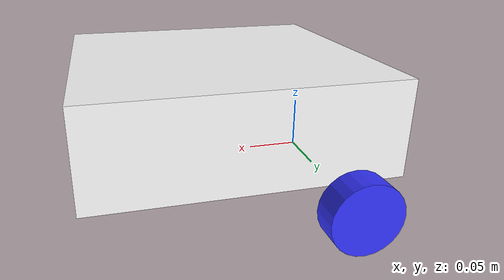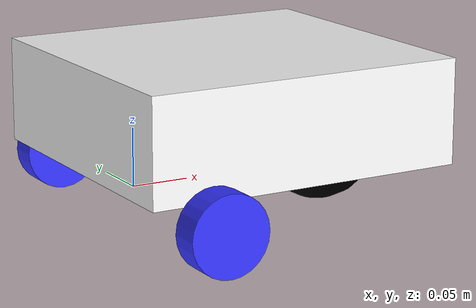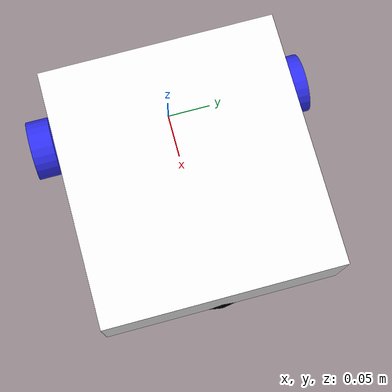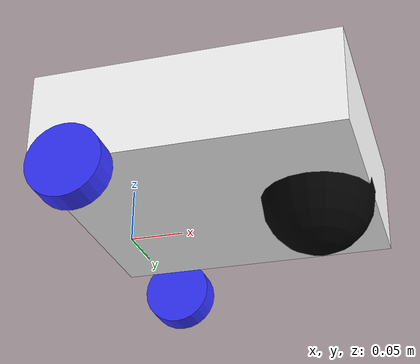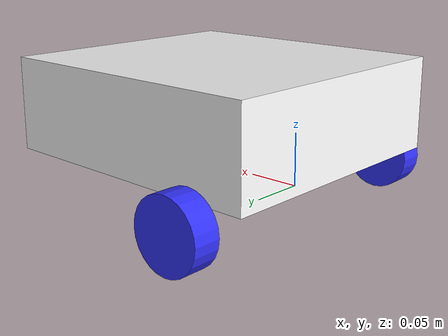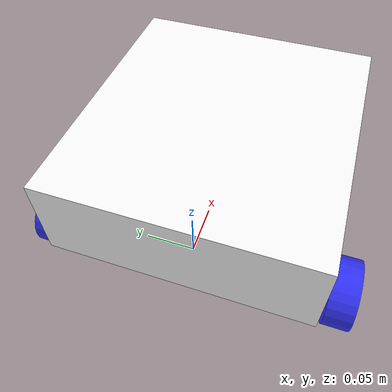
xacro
<?xml version="1.0"?>
<robot xmlns:xacro="http://www.ros.org/wiki/xacro"  name="robot">

    <xacro:arg name="use_sim" default="false" />
    <xacro:arg name="use_lidar" default="false" />
    <xacro:arg name="use_camera" default="false" />

    <xacro:include filename="robot_core.xacro" />
    <xacro:include filename="gazebo_control.xacro"/>
    <xacro:include filename="lidar.xacro" />
    <xacro:include filename="camera.xacro" />

    <!-- Gazebo drive + joint-state plugins -->
    <xacro:if value="$(arg use_sim)">
        <xacro:gazebo_diff_drive/>
    </xacro:if>

    <!-- Optional lidar -->
    <xacro:if value="$(arg use_lidar)">
        <xacro:rplidar_a1 parent="chassis" use_sim="$(arg use_sim)">
            <origin xyz="0.09 0.0 0.13575" rpy="0 0 0"/>
        </xacro:rplidar_a1>
    </xacro:if>

    <!-- Optional camera -->
    <xacro:if value="$(arg use_camera)">
        <xacro:pi_camera_v2 parent="chassis" use_sim="$(arg use_sim)">
            <origin xyz="0.10325 -0.115 0.1235" rpy="0 0 0"/>
        </xacro:pi_camera_v2>
    </xacro:if>

    <!-- Commented out the below on 3/23/26 -->

</robot>

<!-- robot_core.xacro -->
<robot xmlns:xacro="http://www.ros.org/wiki/xacro">

    <xacro:include filename="inertial_macros.xacro" />

    <material name="white">
        <color rgba="1 1 1 1"/>
    </material>

    <material name="orange">
        <color rgba="1 0.3 0.1 1"/>
    </material>

    <material name="blue">
        <color rgba="0.2 0.2 1 1"/>
    </material>

    <material name="black">
        <color rgba="0 0 0 1"/>
    </material>

    <material name="red">
        <color rgba="1 0 0 1"/>
    </material>

    <!-- Your actual robot link -->
    <link name="base_link">
    </link>

    <!-- CHASSIS -->

    <joint name="chassis_joint" type="fixed">
        <parent link="base_link"/>
        <child link="chassis"/>
        <origin xyz="0 0 0"/>
    </joint>

    <link name="chassis">
        <visual>
            <origin xyz="0.09 0 0.0635" rpy="0 0 0"/>
            <geometry>
                <box size="0.28 0.26 0.09"/>
            </geometry>
            <material name="white"/>
        </visual>
        <collision>
            <origin xyz="0.09 0 0.0635" rpy="0 0 0"/>
            <geometry>
                <box size="0.28 0.26 0.09"/>
            </geometry>
        </collision>
        <xacro:inertial_box mass="0.5" x="0.28" y="0.26" z="0.09">
            <origin xyz="0.09 0 0.0635" rpy="0 0 0"/>
        </xacro:inertial_box>
    </link>

    <!-- LEFT WHEEL -->

    <joint name="left_wheel_joint" type="continuous">
        <parent link="base_link"/>
        <child link="left_wheel"/>
        <origin xyz="0 0.149 0" rpy="-${pi/2} 0 0"/>
        <axis xyz="0 0 1"/>
        <limit effort="1.0" velocity="10.0"/>
    </joint>

    <link name="left_wheel">
        <visual>
            <geometry>
                <cylinder length="0.026" radius="0.034" />
            </geometry>
            <material name="blue"/>
        </visual>
        <collision>
            <geometry>
                <sphere radius="0.034" />
            </geometry>
        </collision>
        <xacro:inertial_cylinder mass="0.1" length="0.026" radius="0.034">
            <origin xyz="0 0 0" rpy="0 0 0"/>
        </xacro:inertial_cylinder>
    </link>

    <!-- RIGHT WHEEL -->

    <joint name="right_wheel_joint" type="continuous">
        <parent link="base_link"/>
        <child link="right_wheel"/>
        <origin xyz="0 -0.149 0" rpy="${pi/2} 0 0"/>
        <axis xyz="0 0 -1"/>
        <limit effort="1.0" velocity="10.0"/>
    </joint>

    <link name="right_wheel">
        <visual>
            <geometry>
                <cylinder length="0.026" radius="0.034" />
            </geometry>
            <material name="blue"/>
        </visual>
        <collision>
            <geometry>
                <sphere radius="0.034" />
            </geometry>
        </collision>
        <xacro:inertial_cylinder mass="0.1" length="0.026" radius="0.034">
            <origin xyz="0 0 0" rpy="0 0 0"/>
        </xacro:inertial_cylinder>
    </link>

    <!-- CASTER WHEEL -->

    <joint name="caster_wheel_joint" type="fixed">
        <parent link="chassis"/>
        <child link="caster_wheel"/>
        <origin xyz="0.18 0 0.0185" rpy="0 0 0"/>
    </joint>

    <link name="caster_wheel">
        <visual>
            <geometry>
                <sphere radius="0.0525" />
            </geometry>
            <material name="black"/>
        </visual>
        <collision>
            <geometry>
                <sphere radius="0.0525" />
            </geometry>
        </collision>
        <xacro:inertial_sphere mass="0.1" radius="0.0525">
            <origin xyz="0 0 0" rpy="0 0 0"/>
        </xacro:inertial_sphere>
    </link>

    <gazebo reference="caster_wheel">
        <mu1 value="0.0"/>
        <mu2 value="0.0"/>
    </gazebo>

</robot>
